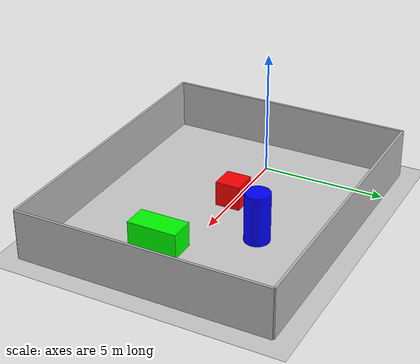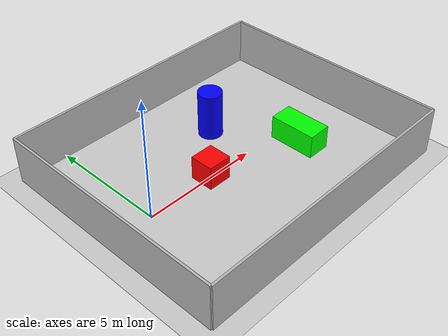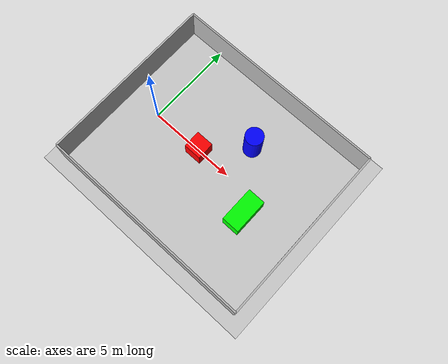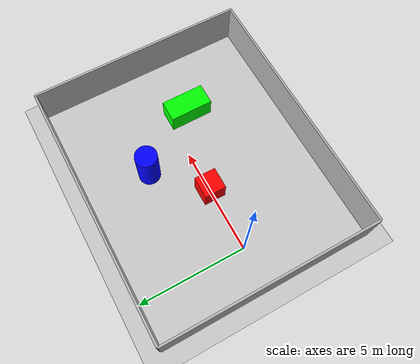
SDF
<?xml version="1.0" ?>
<sdf version="1.7">
  <world name="training_world">
    <!-- Base physics and light -->
    <include>
      <uri>model://sun</uri>
    </include>
    <include>
      <uri>model://ground_plane</uri>
    </include>

    <!-- Obstacles for RL Training -->
    <model name="box1">
      <pose>3 0 0.5 0 0 0</pose>
      <static>true</static>
      <link name="link">
        <collision name="collision">
          <geometry>
            <box>
              <size>1 1 1</size>
            </box>
          </geometry>
        </collision>
        <visual name="visual">
          <geometry>
            <box>
              <size>1 1 1</size>
            </box>
          </geometry>
          <material>
            <ambient>1 0 0 1</ambient>
          </material>
        </visual>
      </link>
    </model>

    <model name="cylinder_1">
      <pose>5 2 1 0 0 0</pose>
      <static>true</static>
      <link name="link">
        <collision name="collision">
          <geometry>
            <cylinder>
              <radius>0.5</radius>
              <length>2</length>
            </cylinder>
          </geometry>
        </collision>
        <visual name="visual">
          <geometry>
            <cylinder>
              <radius>0.5</radius>
              <length>2</length>
            </cylinder>
          </geometry>
          <material>
            <ambient>0 0 1 1</ambient>
          </material>
        </visual>
      </link>
    </model>

    <model name="box2">
      <pose>7 -1 0.5 0 0 0</pose>
      <static>true</static>
      <link name="link">
        <collision name="collision">
          <geometry>
            <box>
              <size>1 2 1</size>
            </box>
          </geometry>
        </collision>
        <visual name="visual">
          <geometry>
            <box>
              <size>1 2 1</size>
            </box>
          </geometry>
          <material>
            <ambient>0 1 0 1</ambient>
          </material>
        </visual>
      </link>
    </model>

    <!-- Walls surrounding the training area -->
    <model name="wall_n">
      <pose>10 0 1 0 0 0</pose>
      <static>true</static>
      <link name="link">
        <collision name="collision">
          <geometry><box><size>0.1 10 2</size></box></geometry>
        </collision>
        <visual name="visual">
          <geometry><box><size>0.1 10 2</size></box></geometry>
        </visual>
      </link>
    </model>

    <model name="wall_s">
      <pose>-2 0 1 0 0 0</pose>
      <static>true</static>
      <link name="link">
        <collision name="collision">
          <geometry><box><size>0.1 10 2</size></box></geometry>
        </collision>
        <visual name="visual">
          <geometry><box><size>0.1 10 2</size></box></geometry>
        </visual>
      </link>
    </model>

    <model name="wall_e">
      <pose>4 5 1 0 0 0</pose>
      <static>true</static>
      <link name="link">
        <collision name="collision">
          <geometry><box><size>12 0.1 2</size></box></geometry>
        </collision>
        <visual name="visual">
          <geometry><box><size>12 0.1 2</size></box></geometry>
        </visual>
      </link>
    </model>

    <model name="wall_w">
      <pose>4 -5 1 0 0 0</pose>
      <static>true</static>
      <link name="link">
        <collision name="collision">
          <geometry><box><size>12 0.1 2</size></box></geometry>
        </collision>
        <visual name="visual">
          <geometry><box><size>12 0.1 2</size></box></geometry>
        </visual>
      </link>
    </model>

  </world>
</sdf>
